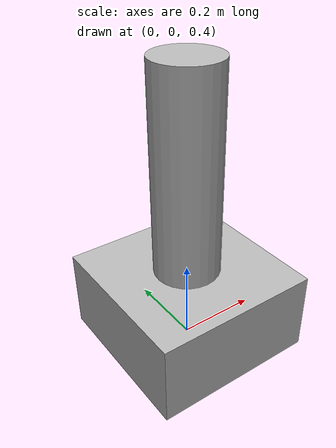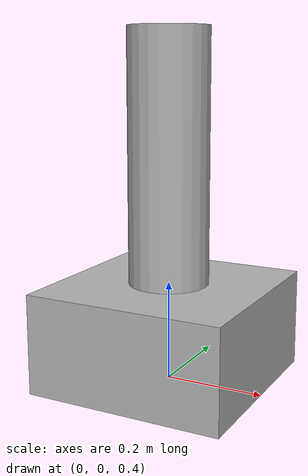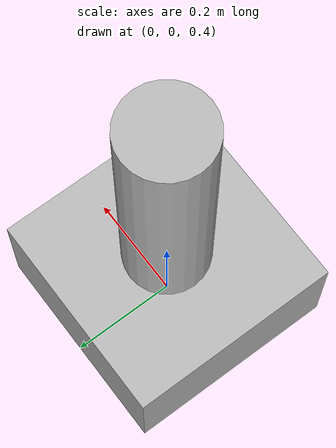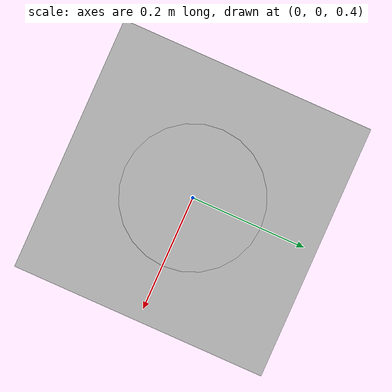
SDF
<?xml version="1.0"?>
<sdf version="1.6">
  <model name="two_link_revolute_model">
    <link name="base">
      <pose>0 0 0.5 0 0 0</pose>
      <inertial>
        <mass>1.0</mass>
        <inertia>
          <ixx>0.02</ixx>
          <ixy>0</ixy>
          <ixz>0</ixz>
          <iyy>0.02</iyy>
          <iyz>0</iyz>
          <izz>0.02</izz>
        </inertia>
      </inertial>
      <collision name="base_collision">
        <geometry>
          <box>
            <size>0.4 0.4 0.2</size>
          </box>
        </geometry>
      </collision>
      <visual name="base_visual">
        <geometry>
          <box>
            <size>0.4 0.4 0.2</size>
          </box>
        </geometry>
      </visual>
    </link>
    <link name="link">
      <pose>0 0 0.85 0 0 0</pose>
      <inertial>
        <mass>0.5</mass>
        <inertia>
          <ixx>0.01</ixx>
          <ixy>0</ixy>
          <ixz>0</ixz>
          <iyy>0.01</iyy>
          <iyz>0</iyz>
          <izz>0.005</izz>
        </inertia>
      </inertial>
      <collision name="link_collision">
        <geometry>
          <cylinder>
            <radius>0.08</radius>
            <length>0.5</length>
          </cylinder>
        </geometry>
      </collision>
      <visual name="link_visual">
        <geometry>
          <cylinder>
            <radius>0.08</radius>
            <length>0.5</length>
          </cylinder>
        </geometry>
      </visual>
    </link>
    <joint name="hinge" type="revolute">
      <pose>0 0 0.65 0 0 0</pose>
      <parent>base</parent>
      <child>link</child>
      <axis>
        <xyz>0 1 0</xyz>
        <limit>
          <lower>-1.57</lower>
          <upper>1.57</upper>
          <effort>10</effort>
          <velocity>10</velocity>
        </limit>
      </axis>
    </joint>
  </model>
</sdf>
